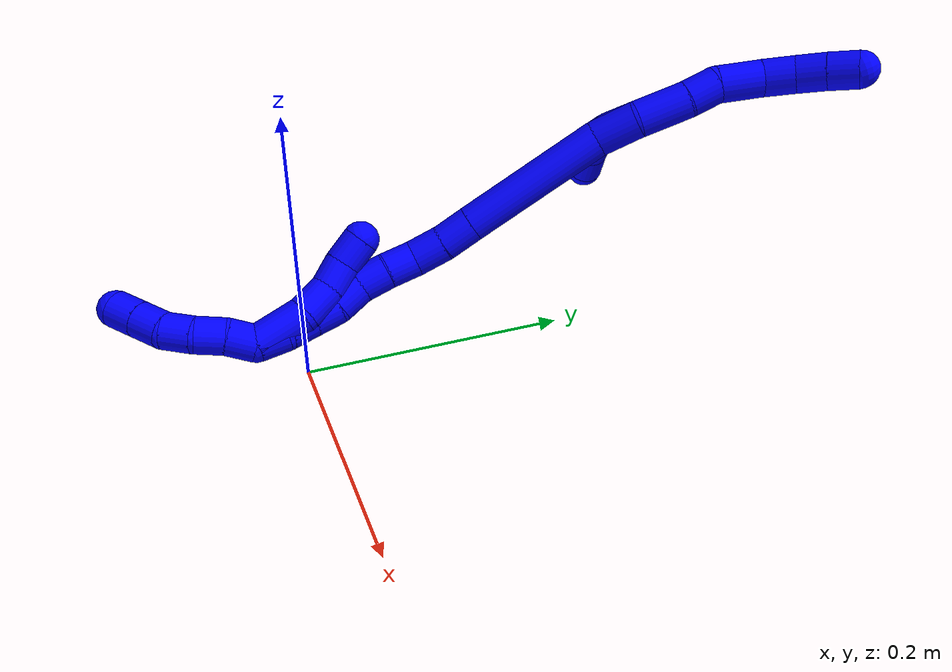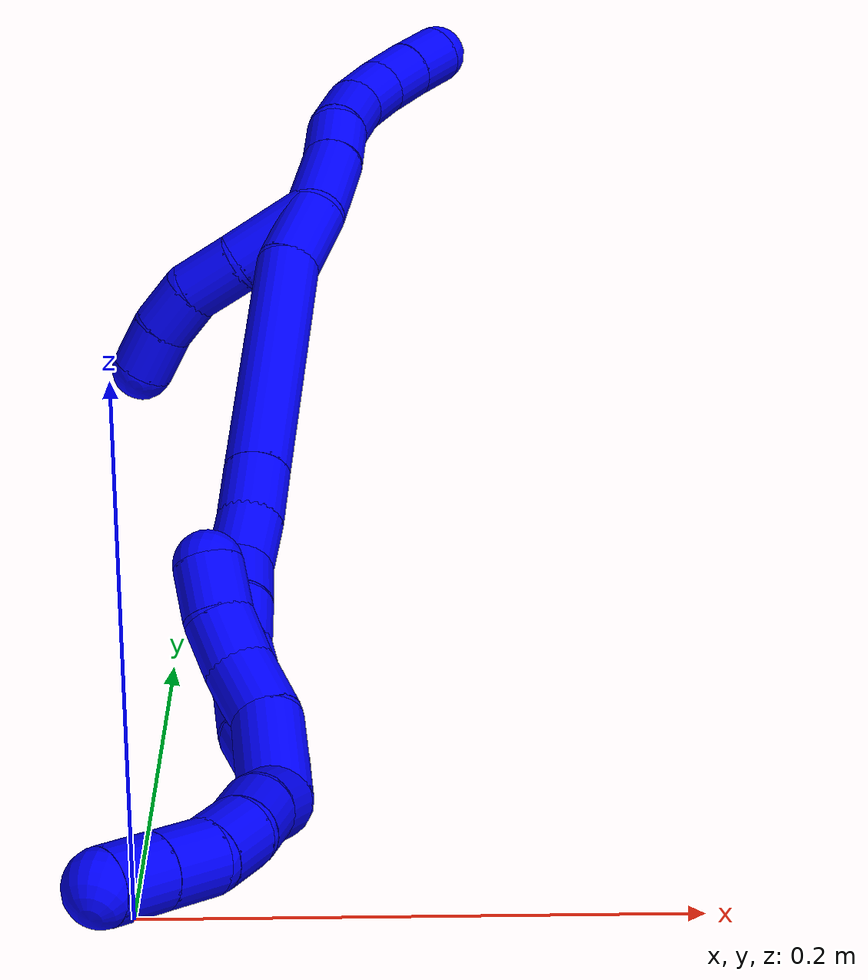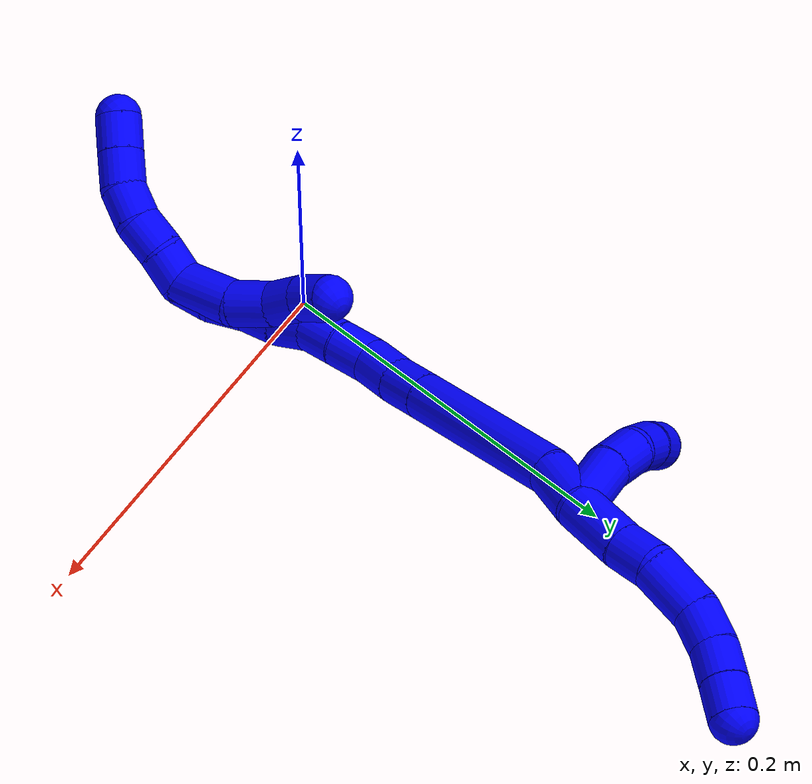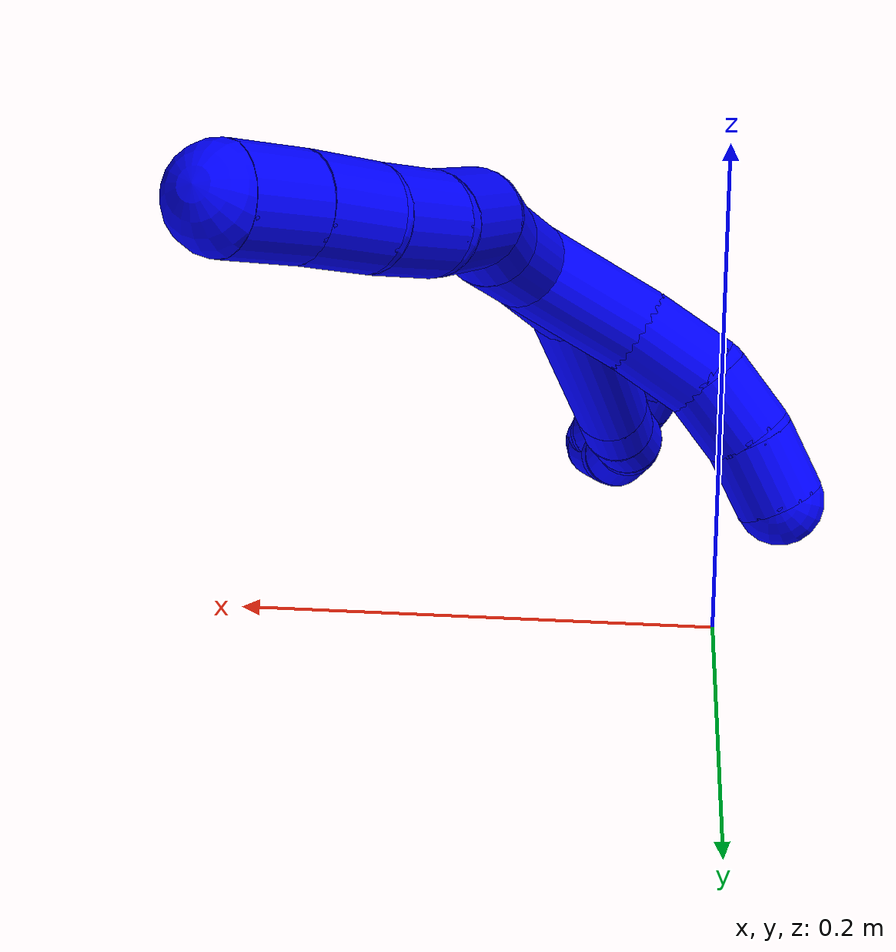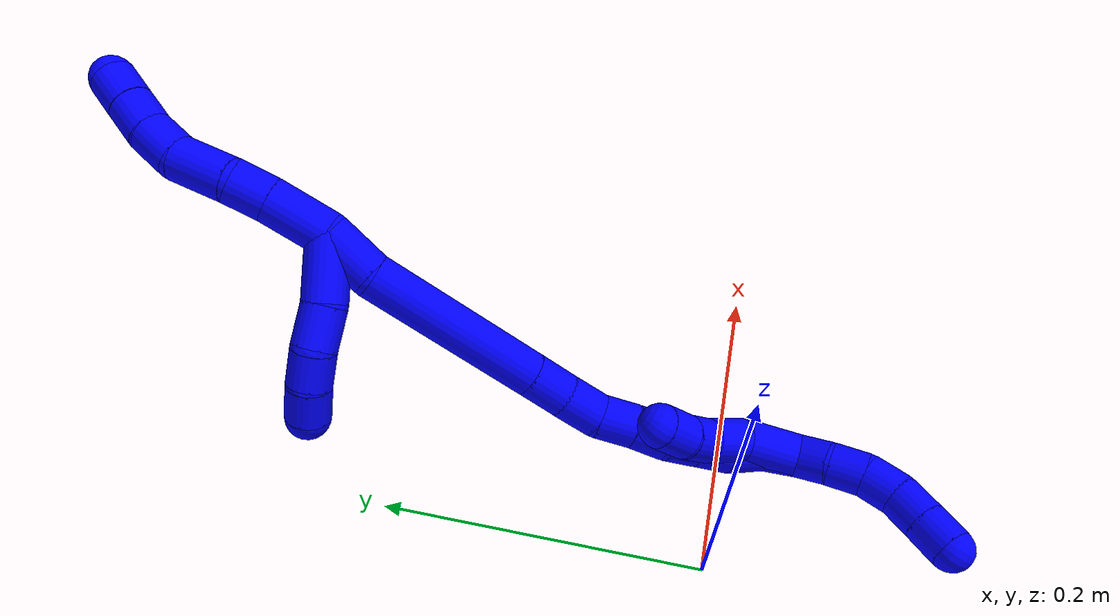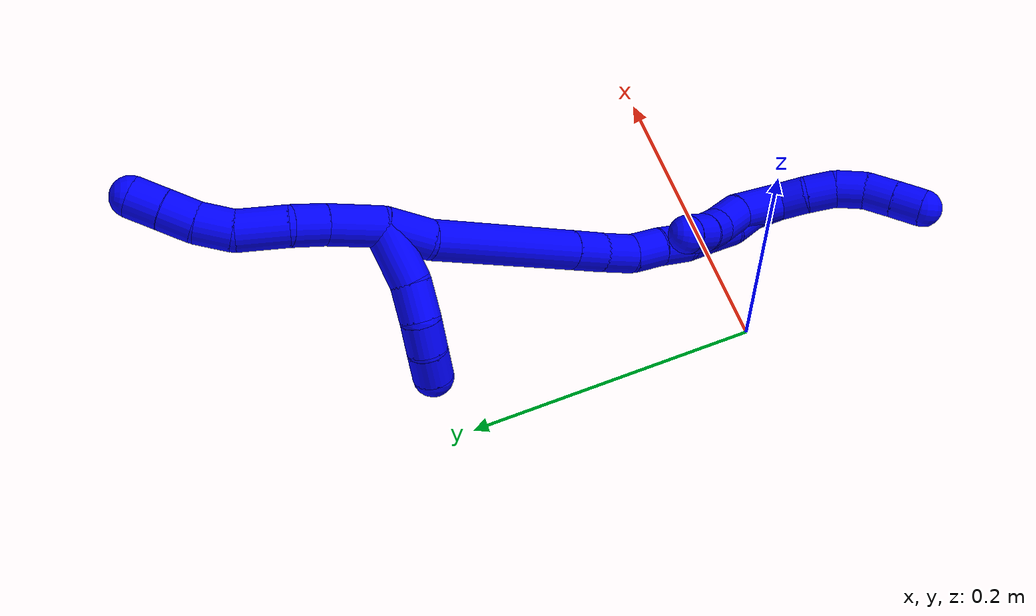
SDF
<sdf version="1.7">
 <world name="default">
  <model name="photoneo_s_sensor">
   <static>1</static>
   <pose>0 0 2 1.57079 1.57079 3.14159</pose>
   <link name="link">
    <inertial><mass>0.1</mass></inertial>
    <sensor name="sensor" type="depth">
     <update_rate>30</update_rate>
     <camera>
      <horizontal_fov>1.22</horizontal_fov>
      <image><width>1920</width><height>1200</height><format>B8G8R8</format></image>
      <clip><near>0.1</near><far>4</far></clip>
      <depth_camera><output>points</output></depth_camera>
     </camera>
     <plugin name="camera_plugin" filename="libgazebo_ros_depth_camera.so">
      <baseline>0.2</baseline>
      <alwaysOn>1</alwaysOn>
      <updateRate>0.0</updateRate>
      <cameraName>camera_ir</cameraName>
      <imageTopicName>/camera/color/image_raw</imageTopicName>
      <cameraInfoTopicName>/camera/color/camera_info</cameraInfoTopicName>
      <depthImageTopicName>/camera/depth/image_raw</depthImageTopicName>
      <depthImageCameraInfoTopicName>/camera/depth/camera_info</depthImageCameraInfoTopicName>
      <pointCloudTopicName>/camera/depth/points</pointCloudTopicName>
      <frameName>fr_optical</frameName>
      <pointCloudCutoff>0.1</pointCloudCutoff>
      <pointCloudCutoffMax>2.0</pointCloudCutoffMax>
      <distortionK1>0</distortionK1>
      <distortionK2>0</distortionK2>
      <distortionK3>0</distortionK3>
      <distortionT1>0</distortionT1>
      <distortionT2>0</distortionT2>
      <CxPrime>0</CxPrime>
      <Cx>0</Cx>
      <Cy>0</Cy>
      <focalLength>0</focalLength>
      <hackBaseline>0</hackBaseline>
     </plugin>
    </sensor>
   </link>
  </model>
  <model name="bin">
   <static>1</static>
   <link name="bottom">
    <collision name="collision-bottom">
     <pose>0 0 -0.01 0 -0 0</pose>
     <geometry><box><size>0.8 0.6 0.02</size></box></geometry>
     <surface>
      <friction><ode><mu>100</mu><mu2>100</mu2></ode></friction>
      <contact><collide_bitmask>65535</collide_bitmask></contact>
     </surface>
    </collision>
   </link>
   <link name="west_wall">
    <collision name="collision-west_wall">
     <pose>-0.41 0 0.1 0 -0 0</pose>
     <geometry><box><size>0.02 0.6 0.2</size></box></geometry>
     <surface>
      <friction><ode><mu>100</mu><mu2>100</mu2></ode></friction>
      <contact><collide_bitmask>65535</collide_bitmask></contact>
     </surface>
    </collision>
   </link>
   <link name="east_wall">
    <collision name="collision-east_wall">
     <pose>0.41 0 0.1 0 -0 0</pose>
     <geometry><box><size>0.02 0.6 0.2</size></box></geometry>
     <surface>
      <friction><ode><mu>100</mu><mu2>100</mu2></ode></friction>
      <contact><collide_bitmask>65535</collide_bitmask></contact>
     </surface>
    </collision>
   </link>
   <link name="south_wall">
    <collision name="collision-south_wall">
     <pose>0 -0.31 0.1 0 -0 0</pose>
     <geometry><box><size>0.8 0.02 0.2</size></box></geometry>
     <surface>
      <friction><ode><mu>100</mu><mu2>100</mu2></ode></friction>
      <contact><collide_bitmask>65535</collide_bitmask></contact>
     </surface>
    </collision>
   </link>
   <link name="north_wall">
    <collision name="collision-north_wall">
     <pose>0 0.31 0.1 0 -0 0</pose>
     <geometry><box><size>0.8 0.02 0.2</size></box></geometry>
     <surface>
      <friction><ode><mu>100</mu><mu2>100</mu2></ode></friction>
      <contact><collide_bitmask>65535</collide_bitmask></contact>
     </surface>
    </collision>
   </link>
  </model>
  <model name="1">
   <static>0</static>
   <link name="1">
    <collision name="collision-cylinder-e_1_2_8">
     <pose>-0.000421 0.000546 0.01757 -0.031074 -0.023938 0.000372</pose>
     <geometry><cylinder><radius>0.0125</radius><length>0.035167</length></cylinder></geometry>
     <surface>
      <friction><ode><mu>1.16</mu><mu2>1.16</mu2><slip1>0</slip1><slip2>0</slip2></ode></friction>
      <contact><ode><kp>1e+06</kp><kd>1</kd><max_vel>0</max_vel><min_depth>0.001</min_depth></ode></contact>
     </surface>
    </collision>
    <visual name="visual-cylinder-e_1_2_8">
     <pose>-0.000421 0.000546 0.01757 -0.031074 -0.023938 0.000372</pose>
     <geometry><cylinder><radius>0.0125</radius><length>0.035167</length></cylinder></geometry>
     <material><ambient>0 0 1 1</ambient></material>
    </visual>
    <collision name="collision-cylinder-e_2_8_9">
     <pose>-0.002362 0.001644 0.045772 -0.051809 -0.141825 0.003681</pose>
     <geometry><cylinder><radius>0.0125</radius><length>0.021507</length></cylinder></geometry>
     <surface>
      <friction><ode><mu>1.16</mu><mu2>1.16</mu2><slip1>0</slip1><slip2>0</slip2></ode></friction>
      <contact><ode><kp>1e+06</kp><kd>1</kd><max_vel>0</max_vel><min_depth>0.001</min_depth></ode></contact>
     </surface>
    </collision>
    <visual name="visual-cylinder-e_2_8_9">
     <pose>-0.002362 0.001644 0.045772 -0.051809 -0.141825 0.003681</pose>
     <geometry><cylinder><radius>0.0125</radius><length>0.021507</length></cylinder></geometry>
     <material><ambient>0 0 1 1</ambient></material>
    </visual>
    <collision name="collision-cylinder-e_3_9_10">
     <pose>-0.002029 0.00593 0.071461 -0.243133 0.118852 -0.014537</pose>
     <geometry><cylinder><radius>0.0125</radius><length>0.03125</length></cylinder></geometry>
     <surface>
      <friction><ode><mu>1.16</mu><mu2>1.16</mu2><slip1>0</slip1><slip2>0</slip2></ode></friction>
      <contact><ode><kp>1e+06</kp><kd>1</kd><max_vel>0</max_vel><min_depth>0.001</min_depth></ode></contact>
     </surface>
    </collision>
    <visual name="visual-cylinder-e_3_9_10">
     <pose>-0.002029 0.00593 0.071461 -0.243133 0.118852 -0.014537</pose>
     <geometry><cylinder><radius>0.0125</radius><length>0.03125</length></cylinder></geometry>
     <material><ambient>0 0 1 1</ambient></material>
    </visual>
    <collision name="collision-cylinder-e_4_10_11">
     <pose>0.003341 0.009643 0.096945 0.00216 0.325387 0.000355</pose>
     <geometry><cylinder><radius>0.0125</radius><length>0.022005</length></cylinder></geometry>
     <surface>
      <friction><ode><mu>1.16</mu><mu2>1.16</mu2><slip1>0</slip1><slip2>0</slip2></ode></friction>
      <contact><ode><kp>1e+06</kp><kd>1</kd><max_vel>0</max_vel><min_depth>0.001</min_depth></ode></contact>
     </surface>
    </collision>
    <visual name="visual-cylinder-e_4_10_11">
     <pose>0.003341 0.009643 0.096945 0.00216 0.325387 0.000355</pose>
     <geometry><cylinder><radius>0.0125</radius><length>0.022005</length></cylinder></geometry>
     <material><ambient>0 0 1 1</ambient></material>
    </visual>
    <collision name="collision-cylinder-e_5_11_12">
     <pose>0.011042 0.008256 0.116379 0.150307 0.430499 0.032922</pose>
     <geometry><cylinder><radius>0.0125</radius><length>0.020053</length></cylinder></geometry>
     <surface>
      <friction><ode><mu>1.16</mu><mu2>1.16</mu2><slip1>0</slip1><slip2>0</slip2></ode></friction>
      <contact><ode><kp>1e+06</kp><kd>1</kd><max_vel>0</max_vel><min_depth>0.001</min_depth></ode></contact>
     </surface>
    </collision>
    <visual name="visual-cylinder-e_5_11_12">
     <pose>0.011042 0.008256 0.116379 0.150307 0.430499 0.032922</pose>
     <geometry><cylinder><radius>0.0125</radius><length>0.020053</length></cylinder></geometry>
     <material><ambient>0 0 1 1</ambient></material>
    </visual>
    <collision name="collision-cylinder-e_6_12_6">
     <pose>0.019726 0.005742 0.134254 0.128875 0.466284 0.030643</pose>
     <geometry><cylinder><radius>0.0125</radius><length>0.020018</length></cylinder></geometry>
     <surface>
      <friction><ode><mu>1.16</mu><mu2>1.16</mu2><slip1>0</slip1><slip2>0</slip2></ode></friction>
      <contact><ode><kp>1e+06</kp><kd>1</kd><max_vel>0</max_vel><min_depth>0.001</min_depth></ode></contact>
     </surface>
    </collision>
    <visual name="visual-cylinder-e_6_12_6">
     <pose>0.019726 0.005742 0.134254 0.128875 0.466284 0.030643</pose>
     <geometry><cylinder><radius>0.0125</radius><length>0.020018</length></cylinder></geometry>
     <material><ambient>0 0 1 1</ambient></material>
    </visual>
    <collision name="collision-cylinder-e_1_2_13">
     <pose>-0.008464 0.013336 -0.008951 -2.16191 -0.484982 0.868748</pose>
     <geometry><cylinder><radius>0.0125</radius><length>0.036311</length></cylinder></geometry>
     <surface>
      <friction><ode><mu>1.16</mu><mu2>1.16</mu2><slip1>0</slip1><slip2>0</slip2></ode></friction>
      <contact><ode><kp>1e+06</kp><kd>1</kd><max_vel>0</max_vel><min_depth>0.001</min_depth></ode></contact>
     </surface>
    </collision>
    <visual name="visual-cylinder-e_1_2_13">
     <pose>-0.008464 0.013336 -0.008951 -2.16191 -0.484982 0.868748</pose>
     <geometry><cylinder><radius>0.0125</radius><length>0.036311</length></cylinder></geometry>
     <material><ambient>0 0 1 1</ambient></material>
    </visual>
    <collision name="collision-cylinder-e_2_13_14">
     <pose>-0.022117 0.036457 -0.021738 -1.9444 -0.458625 0.659445</pose>
     <geometry><cylinder><radius>0.0125</radius><length>0.023441</length></cylinder></geometry>
     <surface>
      <friction><ode><mu>1.16</mu><mu2>1.16</mu2><slip1>0</slip1><slip2>0</slip2></ode></friction>
      <contact><ode><kp>1e+06</kp><kd>1</kd><max_vel>0</max_vel><min_depth>0.001</min_depth></ode></contact>
     </surface>
    </collision>
    <visual name="visual-cylinder-e_2_13_14">
     <pose>-0.022117 0.036457 -0.021738 -1.9444 -0.458625 0.659445</pose>
     <geometry><cylinder><radius>0.0125</radius><length>0.023441</length></cylinder></geometry>
     <material><ambient>0 0 1 1</ambient></material>
    </visual>
    <collision name="collision-cylinder-e_3_14_15">
     <pose>-0.028635 0.055519 -0.02921 -1.94442 -0.132616 0.194106</pose>
     <geometry><cylinder><radius>0.0125</radius><length>0.020106</length></cylinder></geometry>
     <surface>
      <friction><ode><mu>1.16</mu><mu2>1.16</mu2><slip1>0</slip1><slip2>0</slip2></ode></friction>
      <contact><ode><kp>1e+06</kp><kd>1</kd><max_vel>0</max_vel><min_depth>0.001</min_depth></ode></contact>
     </surface>
    </collision>
    <visual name="visual-cylinder-e_3_14_15">
     <pose>-0.028635 0.055519 -0.02921 -1.94442 -0.132616 0.194106</pose>
     <geometry><cylinder><radius>0.0125</radius><length>0.020106</length></cylinder></geometry>
     <material><ambient>0 0 1 1</ambient></material>
    </visual>
    <collision name="collision-cylinder-e_4_15_5">
     <pose>-0.029374 0.074047 -0.036786 -1.9733 0.058646 -0.088676</pose>
     <geometry><cylinder><radius>0.0125</radius><length>0.020142</length></cylinder></geometry>
     <surface>
      <friction><ode><mu>1.16</mu><mu2>1.16</mu2><slip1>0</slip1><slip2>0</slip2></ode></friction>
      <contact><ode><kp>1e+06</kp><kd>1</kd><max_vel>0</max_vel><min_depth>0.001</min_depth></ode></contact>
     </surface>
    </collision>
    <visual name="visual-cylinder-e_4_15_5">
     <pose>-0.029374 0.074047 -0.036786 -1.9733 0.058646 -0.088676</pose>
     <geometry><cylinder><radius>0.0125</radius><length>0.020142</length></cylinder></geometry>
     <material><ambient>0 0 1 1</ambient></material>
    </visual>
    <collision name="collision-cylinder-e_1_2_16">
     <pose>-0.000641 0.002852 -0.01472 -2.95023 -0.042757 0.438419</pose>
     <geometry><cylinder><radius>0.0125</radius><length>0.030014</length></cylinder></geometry>
     <surface>
      <friction><ode><mu>1.16</mu><mu2>1.16</mu2><slip1>0</slip1><slip2>0</slip2></ode></friction>
      <contact><ode><kp>1e+06</kp><kd>1</kd><max_vel>0</max_vel><min_depth>0.001</min_depth></ode></contact>
     </surface>
    </collision>
    <visual name="visual-cylinder-e_1_2_16">
     <pose>-0.000641 0.002852 -0.01472 -2.95023 -0.042757 0.438419</pose>
     <geometry><cylinder><radius>0.0125</radius><length>0.030014</length></cylinder></geometry>
     <material><ambient>0 0 1 1</ambient></material>
    </visual>
    <collision name="collision-cylinder-e_2_16_17">
     <pose>0.00875 0.010555 -0.07921 -3.04441 0.197996 -2.23103</pose>
     <geometry><cylinder><radius>0.0125</radius><length>0.102006</length></cylinder></geometry>
     <surface>
      <friction><ode><mu>1.16</mu><mu2>1.16</mu2><slip1>0</slip1><slip2>0</slip2></ode></friction>
      <contact><ode><kp>1e+06</kp><kd>1</kd><max_vel>0</max_vel><min_depth>0.001</min_depth></ode></contact>
     </surface>
    </collision>
    <visual name="visual-cylinder-e_2_16_17">
     <pose>0.00875 0.010555 -0.07921 -3.04441 0.197996 -2.23103</pose>
     <geometry><cylinder><radius>0.0125</radius><length>0.102006</length></cylinder></geometry>
     <material><ambient>0 0 1 1</ambient></material>
    </visual>
    <collision name="collision-cylinder-e_3_17_18">
     <pose>0.021158 0.016606 -0.140249 -3.03556 0.206678 -2.19567</pose>
     <geometry><cylinder><radius>0.0125</radius><length>0.023157</length></cylinder></geometry>
     <surface>
      <friction><ode><mu>1.16</mu><mu2>1.16</mu2><slip1>0</slip1><slip2>0</slip2></ode></friction>
      <contact><ode><kp>1e+06</kp><kd>1</kd><max_vel>0</max_vel><min_depth>0.001</min_depth></ode></contact>
     </surface>
    </collision>
    <visual name="visual-cylinder-e_3_17_18">
     <pose>0.021158 0.016606 -0.140249 -3.03556 0.206678 -2.19567</pose>
     <geometry><cylinder><radius>0.0125</radius><length>0.023157</length></cylinder></geometry>
     <material><ambient>0 0 1 1</ambient></material>
    </visual>
    <collision name="collision-cylinder-e_4_18_19">
     <pose>0.02485 0.018191 -0.162759 -3.10733 0.116419 -2.56965</pose>
     <geometry><cylinder><radius>0.0125</radius><length>0.022651</length></cylinder></geometry>
     <surface>
      <friction><ode><mu>1.16</mu><mu2>1.16</mu2><slip1>0</slip1><slip2>0</slip2></ode></friction>
      <contact><ode><kp>1e+06</kp><kd>1</kd><max_vel>0</max_vel><min_depth>0.001</min_depth></ode></contact>
     </surface>
    </collision>
    <visual name="visual-cylinder-e_4_18_19">
     <pose>0.02485 0.018191 -0.162759 -3.10733 0.116419 -2.56965</pose>
     <geometry><cylinder><radius>0.0125</radius><length>0.022651</length></cylinder></geometry>
     <material><ambient>0 0 1 1</ambient></material>
    </visual>
    <collision name="collision-cylinder-e_5_19_20">
     <pose>0.028041 0.016237 -0.184077 2.91344 0.179394 1.33104</pose>
     <geometry><cylinder><radius>0.0125</radius><length>0.021025</length></cylinder></geometry>
     <surface>
      <friction><ode><mu>1.16</mu><mu2>1.16</mu2><slip1>0</slip1><slip2>0</slip2></ode></friction>
      <contact><ode><kp>1e+06</kp><kd>1</kd><max_vel>0</max_vel><min_depth>0.001</min_depth></ode></contact>
     </surface>
    </collision>
    <visual name="visual-cylinder-e_5_19_20">
     <pose>0.028041 0.016237 -0.184077 2.91344 0.179394 1.33104</pose>
     <geometry><cylinder><radius>0.0125</radius><length>0.021025</length></cylinder></geometry>
     <material><ambient>0 0 1 1</ambient></material>
    </visual>
    <collision name="collision-cylinder-e_6_20_21">
     <pose>0.031938 0.012711 -0.204078 3.02259 0.199553 2.06804</pose>
     <geometry><cylinder><radius>0.0125</radius><length>0.020397</length></cylinder></geometry>
     <surface>
      <friction><ode><mu>1.16</mu><mu2>1.16</mu2><slip1>0</slip1><slip2>0</slip2></ode></friction>
      <contact><ode><kp>1e+06</kp><kd>1</kd><max_vel>0</max_vel><min_depth>0.001</min_depth></ode></contact>
     </surface>
    </collision>
    <visual name="visual-cylinder-e_6_20_21">
     <pose>0.031938 0.012711 -0.204078 3.02259 0.199553 2.06804</pose>
     <geometry><cylinder><radius>0.0125</radius><length>0.020397</length></cylinder></geometry>
     <material><ambient>0 0 1 1</ambient></material>
    </visual>
    <collision name="collision-cylinder-e_7_21_22">
     <pose>0.038729 0.010524 -0.223157 3.03281 0.477872 2.70181</pose>
     <geometry><cylinder><radius>0.0125</radius><length>0.020738</length></cylinder></geometry>
     <surface>
      <friction><ode><mu>1.16</mu><mu2>1.16</mu2><slip1>0</slip1><slip2>0</slip2></ode></friction>
      <contact><ode><kp>1e+06</kp><kd>1</kd><max_vel>0</max_vel><min_depth>0.001</min_depth></ode></contact>
     </surface>
    </collision>
    <visual name="visual-cylinder-e_7_21_22">
     <pose>0.038729 0.010524 -0.223157 3.03281 0.477872 2.70181</pose>
     <geometry><cylinder><radius>0.0125</radius><length>0.020738</length></cylinder></geometry>
     <material><ambient>0 0 1 1</ambient></material>
    </visual>
    <collision name="collision-cylinder-e_8_22_23">
     <pose>0.04604 0.006966 -0.24164 2.87393 0.256962 1.52954</pose>
     <geometry><cylinder><radius>0.0125</radius><length>0.020007</length></cylinder></geometry>
     <surface>
      <friction><ode><mu>1.16</mu><mu2>1.16</mu2><slip1>0</slip1><slip2>0</slip2></ode></friction>
      <contact><ode><kp>1e+06</kp><kd>1</kd><max_vel>0</max_vel><min_depth>0.001</min_depth></ode></contact>
     </surface>
    </collision>
    <visual name="visual-cylinder-e_8_22_23">
     <pose>0.04604 0.006966 -0.24164 2.87393 0.256962 1.52954</pose>
     <geometry><cylinder><radius>0.0125</radius><length>0.020007</length></cylinder></geometry>
     <material><ambient>0 0 1 1</ambient></material>
    </visual>
    <collision name="collision-cylinder-e_9_23_24">
     <pose>0.052295 -0.000227 -0.259017 2.61911 0.380426 1.24827</pose>
     <geometry><cylinder><radius>0.0125</radius><length>0.020001</length></cylinder></geometry>
     <surface>
      <friction><ode><mu>1.16</mu><mu2>1.16</mu2><slip1>0</slip1><slip2>0</slip2></ode></friction>
      <contact><ode><kp>1e+06</kp><kd>1</kd><max_vel>0</max_vel><min_depth>0.001</min_depth></ode></contact>
     </surface>
    </collision>
    <visual name="visual-cylinder-e_9_23_24">
     <pose>0.052295 -0.000227 -0.259017 2.61911 0.380426 1.24827</pose>
     <geometry><cylinder><radius>0.0125</radius><length>0.020001</length></cylinder></geometry>
     <material><ambient>0 0 1 1</ambient></material>
    </visual>
    <collision name="collision-cylinder-e_10_24_1">
     <pose>0.057642 -0.008237 -0.276336 2.79243 0.16405 0.872325</pose>
     <geometry><cylinder><radius>0.0125</radius><length>0.020005</length></cylinder></geometry>
     <surface>
      <friction><ode><mu>1.16</mu><mu2>1.16</mu2><slip1>0</slip1><slip2>0</slip2></ode></friction>
      <contact><ode><kp>1e+06</kp><kd>1</kd><max_vel>0</max_vel><min_depth>0.001</min_depth></ode></contact>
     </surface>
    </collision>
    <visual name="visual-cylinder-e_10_24_1">
     <pose>0.057642 -0.008237 -0.276336 2.79243 0.16405 0.872325</pose>
     <geometry><cylinder><radius>0.0125</radius><length>0.020005</length></cylinder></geometry>
     <material><ambient>0 0 1 1</ambient></material>
    </visual>
    <collision name="collision-cylinder-e_1_1_25">
     <pose>0.055564 -0.016911 -0.293235 2.53439 -0.380284 -1.1018</pose>
     <geometry><cylinder><radius>0.0125</radius><length>0.02</length></cylinder></geometry>
     <surface>
      <friction><ode><mu>1.16</mu><mu2>1.16</mu2><slip1>0</slip1><slip2>0</slip2></ode></friction>
      <contact><ode><kp>1e+06</kp><kd>1</kd><max_vel>0</max_vel><min_depth>0.001</min_depth></ode></contact>
     </surface>
    </collision>
    <visual name="visual-cylinder-e_1_1_25">
     <pose>0.055564 -0.016911 -0.293235 2.53439 -0.380284 -1.1018</pose>
     <geometry><cylinder><radius>0.0125</radius><length>0.02</length></cylinder></geometry>
     <material><ambient>0 0 1 1</ambient></material>
    </visual>
    <collision name="collision-cylinder-e_2_25_26">
     <pose>0.049397 -0.026383 -0.30961 2.69646 -0.248014 -1.00686</pose>
     <geometry><cylinder><radius>0.0125</radius><length>0.02</length></cylinder></geometry>
     <surface>
      <friction><ode><mu>1.16</mu><mu2>1.16</mu2><slip1>0</slip1><slip2>0</slip2></ode></friction>
      <contact><ode><kp>1e+06</kp><kd>1</kd><max_vel>0</max_vel><min_depth>0.001</min_depth></ode></contact>
     </surface>
    </collision>
    <visual name="visual-cylinder-e_2_25_26">
     <pose>0.049397 -0.026383 -0.30961 2.69646 -0.248014 -1.00686</pose>
     <geometry><cylinder><radius>0.0125</radius><length>0.02</length></cylinder></geometry>
     <material><ambient>0 0 1 1</ambient></material>
    </visual>
    <collision name="collision-cylinder-e_3_26_27">
     <pose>0.042642 -0.032754 -0.327116 2.89571 -0.444512 -2.14086</pose>
     <geometry><cylinder><radius>0.0125</radius><length>0.02</length></cylinder></geometry>
     <surface>
      <friction><ode><mu>1.16</mu><mu2>1.16</mu2><slip1>0</slip1><slip2>0</slip2></ode></friction>
      <contact><ode><kp>1e+06</kp><kd>1</kd><max_vel>0</max_vel><min_depth>0.001</min_depth></ode></contact>
     </surface>
    </collision>
    <visual name="visual-cylinder-e_3_26_27">
     <pose>0.042642 -0.032754 -0.327116 2.89571 -0.444512 -2.14086</pose>
     <geometry><cylinder><radius>0.0125</radius><length>0.02</length></cylinder></geometry>
     <material><ambient>0 0 1 1</ambient></material>
    </visual>
    <collision name="collision-cylinder-e_4_27_28">
     <pose>0.031523 -0.035695 -0.343149 3.03985 -0.750432 -2.88448</pose>
     <geometry><cylinder><radius>0.0125</radius><length>0.02</length></cylinder></geometry>
     <surface>
      <friction><ode><mu>1.16</mu><mu2>1.16</mu2><slip1>0</slip1><slip2>0</slip2></ode></friction>
      <contact><ode><kp>1e+06</kp><kd>1</kd><max_vel>0</max_vel><min_depth>0.001</min_depth></ode></contact>
     </surface>
    </collision>
    <visual name="visual-cylinder-e_4_27_28">
     <pose>0.031523 -0.035695 -0.343149 3.03985 -0.750432 -2.88448</pose>
     <geometry><cylinder><radius>0.0125</radius><length>0.02</length></cylinder></geometry>
     <material><ambient>0 0 1 1</ambient></material>
    </visual>
    <collision name="collision-cylinder-e_5_28_4">
     <pose>0.017855 -0.037037 -0.357687 3.0593 -0.754351 -2.93448</pose>
     <geometry><cylinder><radius>0.0125</radius><length>0.02</length></cylinder></geometry>
     <surface>
      <friction><ode><mu>1.16</mu><mu2>1.16</mu2><slip1>0</slip1><slip2>0</slip2></ode></friction>
      <contact><ode><kp>1e+06</kp><kd>1</kd><max_vel>0</max_vel><min_depth>0.001</min_depth></ode></contact>
     </surface>
    </collision>
    <visual name="visual-cylinder-e_5_28_4">
     <pose>0.017855 -0.037037 -0.357687 3.0593 -0.754351 -2.93448</pose>
     <geometry><cylinder><radius>0.0125</radius><length>0.02</length></cylinder></geometry>
     <material><ambient>0 0 1 1</ambient></material>
    </visual>
    <collision name="collision-cylinder-e_1_1_29">
     <pose>0.054083 -0.008902 -0.268859 -0.16042 -0.296986 0.024048</pose>
     <geometry><cylinder><radius>0.0125</radius><length>0.03549</length></cylinder></geometry>
     <surface>
      <friction><ode><mu>1.16</mu><mu2>1.16</mu2><slip1>0</slip1><slip2>0</slip2></ode></friction>
      <contact><ode><kp>1e+06</kp><kd>1</kd><max_vel>0</max_vel><min_depth>0.001</min_depth></ode></contact>
     </surface>
    </collision>
    <visual name="visual-cylinder-e_1_1_29">
     <pose>0.054083 -0.008902 -0.268859 -0.16042 -0.296986 0.024048</pose>
     <geometry><cylinder><radius>0.0125</radius><length>0.03549</length></cylinder></geometry>
     <material><ambient>0 0 1 1</ambient></material>
    </visual>
    <collision name="collision-cylinder-e_2_29_30">
     <pose>0.041966 -0.003528 -0.242531 -0.271224 -0.608377 0.085619</pose>
     <geometry><cylinder><radius>0.0125</radius><length>0.024231</length></cylinder></geometry>
     <surface>
      <friction><ode><mu>1.16</mu><mu2>1.16</mu2><slip1>0</slip1><slip2>0</slip2></ode></friction>
      <contact><ode><kp>1e+06</kp><kd>1</kd><max_vel>0</max_vel><min_depth>0.001</min_depth></ode></contact>
     </surface>
    </collision>
    <visual name="visual-cylinder-e_2_29_30">
     <pose>0.041966 -0.003528 -0.242531 -0.271224 -0.608377 0.085619</pose>
     <geometry><cylinder><radius>0.0125</radius><length>0.024231</length></cylinder></geometry>
     <material><ambient>0 0 1 1</ambient></material>
    </visual>
    <collision name="collision-cylinder-e_3_30_31">
     <pose>0.028277 -0.001673 -0.225626 0.109875 -0.742535 -0.042813</pose>
     <geometry><cylinder><radius>0.0125</radius><length>0.020008</length></cylinder></geometry>
     <surface>
      <friction><ode><mu>1.16</mu><mu2>1.16</mu2><slip1>0</slip1><slip2>0</slip2></ode></friction>
      <contact><ode><kp>1e+06</kp><kd>1</kd><max_vel>0</max_vel><min_depth>0.001</min_depth></ode></contact>
     </surface>
    </collision>
    <visual name="visual-cylinder-e_3_30_31">
     <pose>0.028277 -0.001673 -0.225626 0.109875 -0.742535 -0.042813</pose>
     <geometry><cylinder><radius>0.0125</radius><length>0.020008</length></cylinder></geometry>
     <material><ambient>0 0 1 1</ambient></material>
    </visual>
    <collision name="collision-cylinder-e_4_31_3">
     <pose>0.016174 -0.003901 -0.209802 0.165515 -0.554753 -0.047224</pose>
     <geometry><cylinder><radius>0.0125</radius><length>0.020272</length></cylinder></geometry>
     <surface>
      <friction><ode><mu>1.16</mu><mu2>1.16</mu2><slip1>0</slip1><slip2>0</slip2></ode></friction>
      <contact><ode><kp>1e+06</kp><kd>1</kd><max_vel>0</max_vel><min_depth>0.001</min_depth></ode></contact>
     </surface>
    </collision>
    <visual name="visual-cylinder-e_4_31_3">
     <pose>0.016174 -0.003901 -0.209802 0.165515 -0.554753 -0.047224</pose>
     <geometry><cylinder><radius>0.0125</radius><length>0.020272</length></cylinder></geometry>
     <material><ambient>0 0 1 1</ambient></material>
    </visual>
    <collision name="collision-sphere-3">
     <pose>0.010835 -0.00532 -0.201304 0 -0 0</pose>
     <geometry><sphere><radius>0.0125</radius></sphere></geometry>
     <surface>
      <friction><ode><mu>1.16</mu><mu2>1.16</mu2><slip1>0</slip1><slip2>0</slip2></ode></friction>
      <contact><ode><kp>1e+06</kp><kd>1</kd><max_vel>0</max_vel><min_depth>0.001</min_depth></ode></contact>
     </surface>
    </collision>
    <visual name="visual-sphere-3">
     <pose>0.010835 -0.00532 -0.201304 0 -0 0</pose>
     <geometry><sphere><radius>0.0125</radius></sphere></geometry>
     <material><ambient>0 0 1 1</ambient></material>
    </visual>
    <collision name="collision-sphere-31">
     <pose>0.021513 -0.002481 -0.2183 0 -0 0</pose>
     <geometry><sphere><radius>0.0125</radius></sphere></geometry>
     <surface>
      <friction><ode><mu>1.16</mu><mu2>1.16</mu2><slip1>0</slip1><slip2>0</slip2></ode></friction>
      <contact><ode><kp>1e+06</kp><kd>1</kd><max_vel>0</max_vel><min_depth>0.001</min_depth></ode></contact>
     </surface>
    </collision>
    <visual name="visual-sphere-31">
     <pose>0.021513 -0.002481 -0.2183 0 -0 0</pose>
     <geometry><sphere><radius>0.0125</radius></sphere></geometry>
     <material><ambient>0 0 1 1</ambient></material>
    </visual>
    <collision name="collision-sphere-30">
     <pose>0.035041 -0.000865 -0.232953 0 -0 0</pose>
     <geometry><sphere><radius>0.0125</radius></sphere></geometry>
     <surface>
      <friction><ode><mu>1.16</mu><mu2>1.16</mu2><slip1>0</slip1><slip2>0</slip2></ode></friction>
      <contact><ode><kp>1e+06</kp><kd>1</kd><max_vel>0</max_vel><min_depth>0.001</min_depth></ode></contact>
     </surface>
    </collision>
    <visual name="visual-sphere-30">
     <pose>0.035041 -0.000865 -0.232953 0 -0 0</pose>
     <geometry><sphere><radius>0.0125</radius></sphere></geometry>
     <material><ambient>0 0 1 1</ambient></material>
    </visual>
    <collision name="collision-sphere-29">
     <pose>0.04889 -0.006192 -0.252109 0 -0 0</pose>
     <geometry><sphere><radius>0.0125</radius></sphere></geometry>
     <surface>
      <friction><ode><mu>1.16</mu><mu2>1.16</mu2><slip1>0</slip1><slip2>0</slip2></ode></friction>
      <contact><ode><kp>1e+06</kp><kd>1</kd><max_vel>0</max_vel><min_depth>0.001</min_depth></ode></contact>
     </surface>
    </collision>
    <visual name="visual-sphere-29">
     <pose>0.04889 -0.006192 -0.252109 0 -0 0</pose>
     <geometry><sphere><radius>0.0125</radius></sphere></geometry>
     <material><ambient>0 0 1 1</ambient></material>
    </visual>
    <collision name="collision-sphere-4">
     <pose>0.011007 -0.037636 -0.36495 0 -0 0</pose>
     <geometry><sphere><radius>0.0125</radius></sphere></geometry>
     <surface>
      <friction><ode><mu>1.16</mu><mu2>1.16</mu2><slip1>0</slip1><slip2>0</slip2></ode></friction>
      <contact><ode><kp>1e+06</kp><kd>1</kd><max_vel>0</max_vel><min_depth>0.001</min_depth></ode></contact>
     </surface>
    </collision>
    <visual name="visual-sphere-4">
     <pose>0.011007 -0.037636 -0.36495 0 -0 0</pose>
     <geometry><sphere><radius>0.0125</radius></sphere></geometry>
     <material><ambient>0 0 1 1</ambient></material>
    </visual>
    <collision name="collision-sphere-28">
     <pose>0.024703 -0.036438 -0.350425 0 -0 0</pose>
     <geometry><sphere><radius>0.0125</radius></sphere></geometry>
     <surface>
      <friction><ode><mu>1.16</mu><mu2>1.16</mu2><slip1>0</slip1><slip2>0</slip2></ode></friction>
      <contact><ode><kp>1e+06</kp><kd>1</kd><max_vel>0</max_vel><min_depth>0.001</min_depth></ode></contact>
     </surface>
    </collision>
    <visual name="visual-sphere-28">
     <pose>0.024703 -0.036438 -0.350425 0 -0 0</pose>
     <geometry><sphere><radius>0.0125</radius></sphere></geometry>
     <material><ambient>0 0 1 1</ambient></material>
    </visual>
    <collision name="collision-sphere-27">
     <pose>0.038342 -0.034952 -0.335873 0 -0 0</pose>
     <geometry><sphere><radius>0.0125</radius></sphere></geometry>
     <surface>
      <friction><ode><mu>1.16</mu><mu2>1.16</mu2><slip1>0</slip1><slip2>0</slip2></ode></friction>
      <contact><ode><kp>1e+06</kp><kd>1</kd><max_vel>0</max_vel><min_depth>0.001</min_depth></ode></contact>
     </surface>
    </collision>
    <visual name="visual-sphere-27">
     <pose>0.038342 -0.034952 -0.335873 0 -0 0</pose>
     <geometry><sphere><radius>0.0125</radius></sphere></geometry>
     <material><ambient>0 0 1 1</ambient></material>
    </visual>
    <collision name="collision-sphere-26">
     <pose>0.046942 -0.030557 -0.318359 0 -0 0</pose>
     <geometry><sphere><radius>0.0125</radius></sphere></geometry>
     <surface>
      <friction><ode><mu>1.16</mu><mu2>1.16</mu2><slip1>0</slip1><slip2>0</slip2></ode></friction>
      <contact><ode><kp>1e+06</kp><kd>1</kd><max_vel>0</max_vel><min_depth>0.001</min_depth></ode></contact>
     </surface>
    </collision>
    <visual name="visual-sphere-26">
     <pose>0.046942 -0.030557 -0.318359 0 -0 0</pose>
     <geometry><sphere><radius>0.0125</radius></sphere></geometry>
     <material><ambient>0 0 1 1</ambient></material>
    </visual>
    <collision name="collision-sphere-25">
     <pose>0.051852 -0.022209 -0.300861 0 -0 0</pose>
     <geometry><sphere><radius>0.0125</radius></sphere></geometry>
     <surface>
      <friction><ode><mu>1.16</mu><mu2>1.16</mu2><slip1>0</slip1><slip2>0</slip2></ode></friction>
      <contact><ode><kp>1e+06</kp><kd>1</kd><max_vel>0</max_vel><min_depth>0.001</min_depth></ode></contact>
     </surface>
    </collision>
    <visual name="visual-sphere-25">
     <pose>0.051852 -0.022209 -0.300861 0 -0 0</pose>
     <geometry><sphere><radius>0.0125</radius></sphere></geometry>
     <material><ambient>0 0 1 1</ambient></material>
    </visual>
    <collision name="collision-sphere-1">
     <pose>0.059276 -0.011613 -0.285609 0 -0 0</pose>
     <geometry><sphere><radius>0.0125</radius></sphere></geometry>
     <surface>
      <friction><ode><mu>1.16</mu><mu2>1.16</mu2><slip1>0</slip1><slip2>0</slip2></ode></friction>
      <contact><ode><kp>1e+06</kp><kd>1</kd><max_vel>0</max_vel><min_depth>0.001</min_depth></ode></contact>
     </surface>
    </collision>
    <visual name="visual-sphere-1">
     <pose>0.059276 -0.011613 -0.285609 0 -0 0</pose>
     <geometry><sphere><radius>0.0125</radius></sphere></geometry>
     <material><ambient>0 0 1 1</ambient></material>
    </visual>
    <collision name="collision-sphere-24">
     <pose>0.056009 -0.004861 -0.267064 0 -0 0</pose>
     <geometry><sphere><radius>0.0125</radius></sphere></geometry>
     <surface>
      <friction><ode><mu>1.16</mu><mu2>1.16</mu2><slip1>0</slip1><slip2>0</slip2></ode></friction>
      <contact><ode><kp>1e+06</kp><kd>1</kd><max_vel>0</max_vel><min_depth>0.001</min_depth></ode></contact>
     </surface>
    </collision>
    <visual name="visual-sphere-24">
     <pose>0.056009 -0.004861 -0.267064 0 -0 0</pose>
     <geometry><sphere><radius>0.0125</radius></sphere></geometry>
     <material><ambient>0 0 1 1</ambient></material>
    </visual>
    <collision name="collision-sphere-23">
     <pose>0.048582 0.004407 -0.250971 0 -0 0</pose>
     <geometry><sphere><radius>0.0125</radius></sphere></geometry>
     <surface>
      <friction><ode><mu>1.16</mu><mu2>1.16</mu2><slip1>0</slip1><slip2>0</slip2></ode></friction>
      <contact><ode><kp>1e+06</kp><kd>1</kd><max_vel>0</max_vel><min_depth>0.001</min_depth></ode></contact>
     </surface>
    </collision>
    <visual name="visual-sphere-23">
     <pose>0.048582 0.004407 -0.250971 0 -0 0</pose>
     <geometry><sphere><radius>0.0125</radius></sphere></geometry>
     <material><ambient>0 0 1 1</ambient></material>
    </visual>
    <collision name="collision-sphere-22">
     <pose>0.043497 0.009525 -0.23231 0 -0 0</pose>
     <geometry><sphere><radius>0.0125</radius></sphere></geometry>
     <surface>
      <friction><ode><mu>1.16</mu><mu2>1.16</mu2><slip1>0</slip1><slip2>0</slip2></ode></friction>
      <contact><ode><kp>1e+06</kp><kd>1</kd><max_vel>0</max_vel><min_depth>0.001</min_depth></ode></contact>
     </surface>
    </collision>
    <visual name="visual-sphere-22">
     <pose>0.043497 0.009525 -0.23231 0 -0 0</pose>
     <geometry><sphere><radius>0.0125</radius></sphere></geometry>
     <material><ambient>0 0 1 1</ambient></material>
    </visual>
    <collision name="collision-sphere-21">
     <pose>0.03396 0.011524 -0.214003 0 -0 0</pose>
     <geometry><sphere><radius>0.0125</radius></sphere></geometry>
     <surface>
      <friction><ode><mu>1.16</mu><mu2>1.16</mu2><slip1>0</slip1><slip2>0</slip2></ode></friction>
      <contact><ode><kp>1e+06</kp><kd>1</kd><max_vel>0</max_vel><min_depth>0.001</min_depth></ode></contact>
     </surface>
    </collision>
    <visual name="visual-sphere-21">
     <pose>0.03396 0.011524 -0.214003 0 -0 0</pose>
     <geometry><sphere><radius>0.0125</radius></sphere></geometry>
     <material><ambient>0 0 1 1</ambient></material>
    </visual>
    <collision name="collision-sphere-12">
     <pose>0.015227 0.006891 0.125388 0 -0 0</pose>
     <geometry><sphere><radius>0.0125</radius></sphere></geometry>
     <surface>
      <friction><ode><mu>1.16</mu><mu2>1.16</mu2><slip1>0</slip1><slip2>0</slip2></ode></friction>
      <contact><ode><kp>1e+06</kp><kd>1</kd><max_vel>0</max_vel><min_depth>0.001</min_depth></ode></contact>
     </surface>
    </collision>
    <visual name="visual-sphere-12">
     <pose>0.015227 0.006891 0.125388 0 -0 0</pose>
     <geometry><sphere><radius>0.0125</radius></sphere></geometry>
     <material><ambient>0 0 1 1</ambient></material>
    </visual>
    <collision name="collision-sphere-11">
     <pose>0.006858 0.00962 0.10737 0 -0 0</pose>
     <geometry><sphere><radius>0.0125</radius></sphere></geometry>
     <surface>
      <friction><ode><mu>1.16</mu><mu2>1.16</mu2><slip1>0</slip1><slip2>0</slip2></ode></friction>
      <contact><ode><kp>1e+06</kp><kd>1</kd><max_vel>0</max_vel><min_depth>0.001</min_depth></ode></contact>
     </surface>
    </collision>
    <visual name="visual-sphere-11">
     <pose>0.006858 0.00962 0.10737 0 -0 0</pose>
     <geometry><sphere><radius>0.0125</radius></sphere></geometry>
     <material><ambient>0 0 1 1</ambient></material>
    </visual>
    <collision name="collision-sphere-10">
     <pose>-0.000176 0.009665 0.08652 0 -0 0</pose>
     <geometry><sphere><radius>0.0125</radius></sphere></geometry>
     <surface>
      <friction><ode><mu>1.16</mu><mu2>1.16</mu2><slip1>0</slip1><slip2>0</slip2></ode></friction>
      <contact><ode><kp>1e+06</kp><kd>1</kd><max_vel>0</max_vel><min_depth>0.001</min_depth></ode></contact>
     </surface>
    </collision>
    <visual name="visual-sphere-10">
     <pose>-0.000176 0.009665 0.08652 0 -0 0</pose>
     <geometry><sphere><radius>0.0125</radius></sphere></geometry>
     <material><ambient>0 0 1 1</ambient></material>
    </visual>
    <collision name="collision-sphere-9">
     <pose>-0.003882 0.002195 0.056403 0 -0 0</pose>
     <geometry><sphere><radius>0.0125</radius></sphere></geometry>
     <surface>
      <friction><ode><mu>1.16</mu><mu2>1.16</mu2><slip1>0</slip1><slip2>0</slip2></ode></friction>
      <contact><ode><kp>1e+06</kp><kd>1</kd><max_vel>0</max_vel><min_depth>0.001</min_depth></ode></contact>
     </surface>
    </collision>
    <visual name="visual-sphere-9">
     <pose>-0.003882 0.002195 0.056403 0 -0 0</pose>
     <geometry><sphere><radius>0.0125</radius></sphere></geometry>
     <material><ambient>0 0 1 1</ambient></material>
    </visual>
    <collision name="collision-sphere-2">
     <geometry><sphere><radius>0.0125</radius></sphere></geometry>
     <surface>
      <friction><ode><mu>1.16</mu><mu2>1.16</mu2><slip1>0</slip1><slip2>0</slip2></ode></friction>
      <contact><ode><kp>1e+06</kp><kd>1</kd><max_vel>0</max_vel><min_depth>0.001</min_depth></ode></contact>
     </surface>
    </collision>
    <visual name="visual-sphere-2">
     <geometry><sphere><radius>0.0125</radius></sphere></geometry>
     <material><ambient>0 0 1 1</ambient></material>
    </visual>
    <collision name="collision-sphere-19">
     <pose>0.026165 0.018576 -0.174001 0 -0 0</pose>
     <geometry><sphere><radius>0.0125</radius></sphere></geometry>
     <surface>
      <friction><ode><mu>1.16</mu><mu2>1.16</mu2><slip1>0</slip1><slip2>0</slip2></ode></friction>
      <contact><ode><kp>1e+06</kp><kd>1</kd><max_vel>0</max_vel><min_depth>0.001</min_depth></ode></contact>
     </surface>
    </collision>
    <visual name="visual-sphere-19">
     <pose>0.026165 0.018576 -0.174001 0 -0 0</pose>
     <geometry><sphere><radius>0.0125</radius></sphere></geometry>
     <material><ambient>0 0 1 1</ambient></material>
    </visual>
    <collision name="collision-sphere-8">
     <pose>-0.000842 0.001092 0.03514 0 -0 0</pose>
     <geometry><sphere><radius>0.0125</radius></sphere></geometry>
     <surface>
      <friction><ode><mu>1.16</mu><mu2>1.16</mu2><slip1>0</slip1><slip2>0</slip2></ode></friction>
      <contact><ode><kp>1e+06</kp><kd>1</kd><max_vel>0</max_vel><min_depth>0.001</min_depth></ode></contact>
     </surface>
    </collision>
    <visual name="visual-sphere-8">
     <pose>-0.000842 0.001092 0.03514 0 -0 0</pose>
     <geometry><sphere><radius>0.0125</radius></sphere></geometry>
     <material><ambient>0 0 1 1</ambient></material>
    </visual>
    <collision name="collision-sphere-6">
     <pose>0.024226 0.004593 0.14312 0 -0 0</pose>
     <geometry><sphere><radius>0.0125</radius></sphere></geometry>
     <surface>
      <friction><ode><mu>1.16</mu><mu2>1.16</mu2><slip1>0</slip1><slip2>0</slip2></ode></friction>
      <contact><ode><kp>1e+06</kp><kd>1</kd><max_vel>0</max_vel><min_depth>0.001</min_depth></ode></contact>
     </surface>
    </collision>
    <visual name="visual-sphere-6">
     <pose>0.024226 0.004593 0.14312 0 -0 0</pose>
     <geometry><sphere><radius>0.0125</radius></sphere></geometry>
     <material><ambient>0 0 1 1</ambient></material>
    </visual>
    <collision name="collision-sphere-13">
     <pose>-0.016928 0.026673 -0.017902 0 -0 0</pose>
     <geometry><sphere><radius>0.0125</radius></sphere></geometry>
     <surface>
      <friction><ode><mu>1.16</mu><mu2>1.16</mu2><slip1>0</slip1><slip2>0</slip2></ode></friction>
      <contact><ode><kp>1e+06</kp><kd>1</kd><max_vel>0</max_vel><min_depth>0.001</min_depth></ode></contact>
     </surface>
    </collision>
    <visual name="visual-sphere-13">
     <pose>-0.016928 0.026673 -0.017902 0 -0 0</pose>
     <geometry><sphere><radius>0.0125</radius></sphere></geometry>
     <material><ambient>0 0 1 1</ambient></material>
    </visual>
    <collision name="collision-sphere-14">
     <pose>-0.027306 0.046242 -0.025573 0 -0 0</pose>
     <geometry><sphere><radius>0.0125</radius></sphere></geometry>
     <surface>
      <friction><ode><mu>1.16</mu><mu2>1.16</mu2><slip1>0</slip1><slip2>0</slip2></ode></friction>
      <contact><ode><kp>1e+06</kp><kd>1</kd><max_vel>0</max_vel><min_depth>0.001</min_depth></ode></contact>
     </surface>
    </collision>
    <visual name="visual-sphere-14">
     <pose>-0.027306 0.046242 -0.025573 0 -0 0</pose>
     <geometry><sphere><radius>0.0125</radius></sphere></geometry>
     <material><ambient>0 0 1 1</ambient></material>
    </visual>
    <collision name="collision-sphere-15">
     <pose>-0.029964 0.064797 -0.032847 0 -0 0</pose>
     <geometry><sphere><radius>0.0125</radius></sphere></geometry>
     <surface>
      <friction><ode><mu>1.16</mu><mu2>1.16</mu2><slip1>0</slip1><slip2>0</slip2></ode></friction>
      <contact><ode><kp>1e+06</kp><kd>1</kd><max_vel>0</max_vel><min_depth>0.001</min_depth></ode></contact>
     </surface>
    </collision>
    <visual name="visual-sphere-15">
     <pose>-0.029964 0.064797 -0.032847 0 -0 0</pose>
     <geometry><sphere><radius>0.0125</radius></sphere></geometry>
     <material><ambient>0 0 1 1</ambient></material>
    </visual>
    <collision name="collision-sphere-5">
     <pose>-0.028784 0.083297 -0.040724 0 -0 0</pose>
     <geometry><sphere><radius>0.0125</radius></sphere></geometry>
     <surface>
      <friction><ode><mu>1.16</mu><mu2>1.16</mu2><slip1>0</slip1><slip2>0</slip2></ode></friction>
      <contact><ode><kp>1e+06</kp><kd>1</kd><max_vel>0</max_vel><min_depth>0.001</min_depth></ode></contact>
     </surface>
    </collision>
    <visual name="visual-sphere-5">
     <pose>-0.028784 0.083297 -0.040724 0 -0 0</pose>
     <geometry><sphere><radius>0.0125</radius></sphere></geometry>
     <material><ambient>0 0 1 1</ambient></material>
    </visual>
    <collision name="collision-sphere-16">
     <pose>-0.001283 0.005703 -0.029439 0 -0 0</pose>
     <geometry><sphere><radius>0.0125</radius></sphere></geometry>
     <surface>
      <friction><ode><mu>1.16</mu><mu2>1.16</mu2><slip1>0</slip1><slip2>0</slip2></ode></friction>
      <contact><ode><kp>1e+06</kp><kd>1</kd><max_vel>0</max_vel><min_depth>0.001</min_depth></ode></contact>
     </surface>
    </collision>
    <visual name="visual-sphere-16">
     <pose>-0.001283 0.005703 -0.029439 0 -0 0</pose>
     <geometry><sphere><radius>0.0125</radius></sphere></geometry>
     <material><ambient>0 0 1 1</ambient></material>
    </visual>
    <collision name="collision-sphere-17">
     <pose>0.018782 0.015407 -0.128981 0 -0 0</pose>
     <geometry><sphere><radius>0.0125</radius></sphere></geometry>
     <surface>
      <friction><ode><mu>1.16</mu><mu2>1.16</mu2><slip1>0</slip1><slip2>0</slip2></ode></friction>
      <contact><ode><kp>1e+06</kp><kd>1</kd><max_vel>0</max_vel><min_depth>0.001</min_depth></ode></contact>
     </surface>
    </collision>
    <visual name="visual-sphere-17">
     <pose>0.018782 0.015407 -0.128981 0 -0 0</pose>
     <geometry><sphere><radius>0.0125</radius></sphere></geometry>
     <material><ambient>0 0 1 1</ambient></material>
    </visual>
    <collision name="collision-sphere-18">
     <pose>0.023534 0.017806 -0.151517 0 -0 0</pose>
     <geometry><sphere><radius>0.0125</radius></sphere></geometry>
     <surface>
      <friction><ode><mu>1.16</mu><mu2>1.16</mu2><slip1>0</slip1><slip2>0</slip2></ode></friction>
      <contact><ode><kp>1e+06</kp><kd>1</kd><max_vel>0</max_vel><min_depth>0.001</min_depth></ode></contact>
     </surface>
    </collision>
    <visual name="visual-sphere-18">
     <pose>0.023534 0.017806 -0.151517 0 -0 0</pose>
     <geometry><sphere><radius>0.0125</radius></sphere></geometry>
     <material><ambient>0 0 1 1</ambient></material>
    </visual>
    <collision name="collision-sphere-20">
     <pose>0.029917 0.013897 -0.194153 0 -0 0</pose>
     <geometry><sphere><radius>0.0125</radius></sphere></geometry>
     <surface>
      <friction><ode><mu>1.16</mu><mu2>1.16</mu2><slip1>0</slip1><slip2>0</slip2></ode></friction>
      <contact><ode><kp>1e+06</kp><kd>1</kd><max_vel>0</max_vel><min_depth>0.001</min_depth></ode></contact>
     </surface>
    </collision>
    <visual name="visual-sphere-20">
     <pose>0.029917 0.013897 -0.194153 0 -0 0</pose>
     <geometry><sphere><radius>0.0125</radius></sphere></geometry>
     <material><ambient>0 0 1 1</ambient></material>
    </visual>
    <inertial>
     <pose>0.017903 0.00525 -0.122179 0 -0 0</pose>
     <mass>0.75</mass>
     <inertia>
      <ixx>-9.3e-05</ixx>
      <ixy>0</ixy>
      <ixz>0</ixz>
      <iyy>2.5e-05</iyy>
      <iyz>0</iyz>
      <izz>-4.1e-05</izz>
     </inertia>
    </inertial>
   </link>
   <pose>0.061077 0.225752 0.189543 -1.1496 0.528732 -0.02447</pose>
  </model>
 </world>
</sdf>
